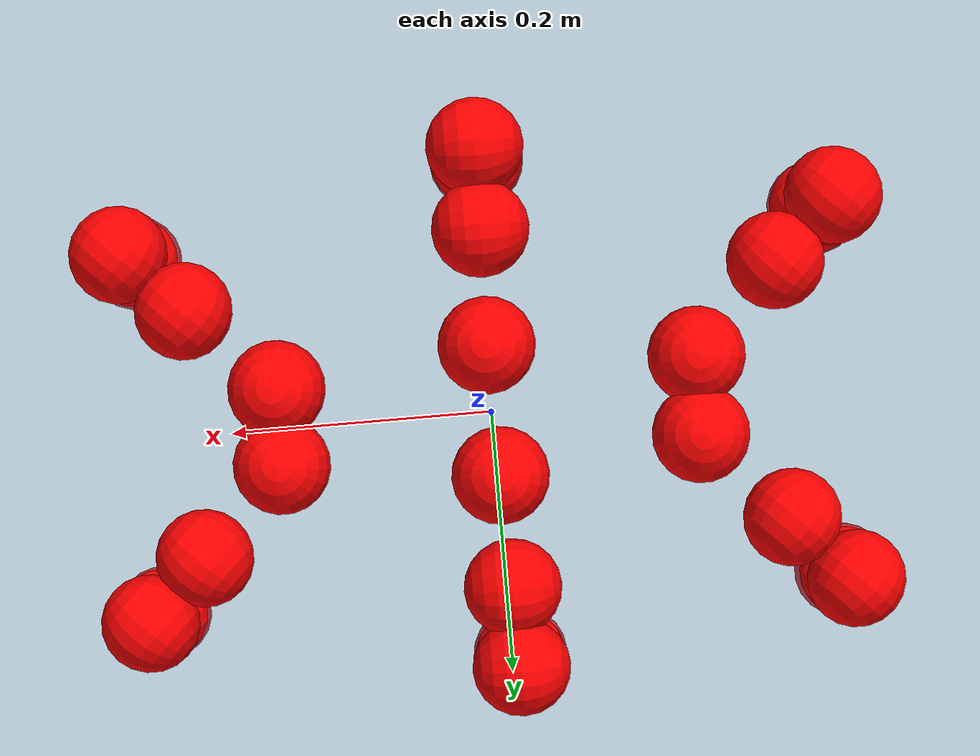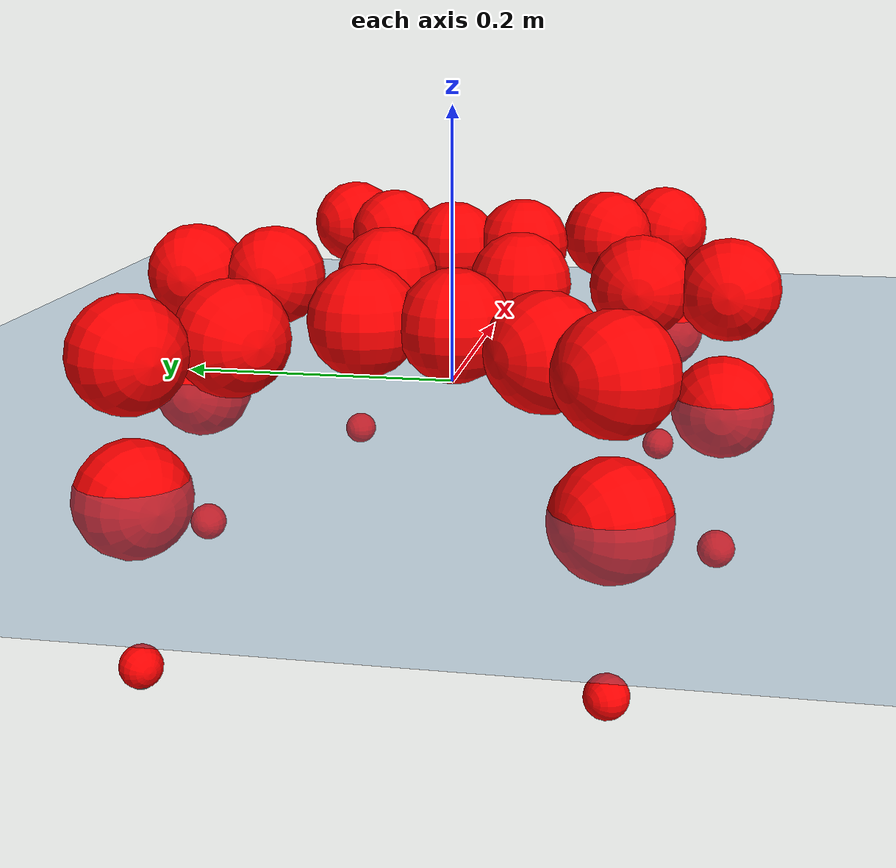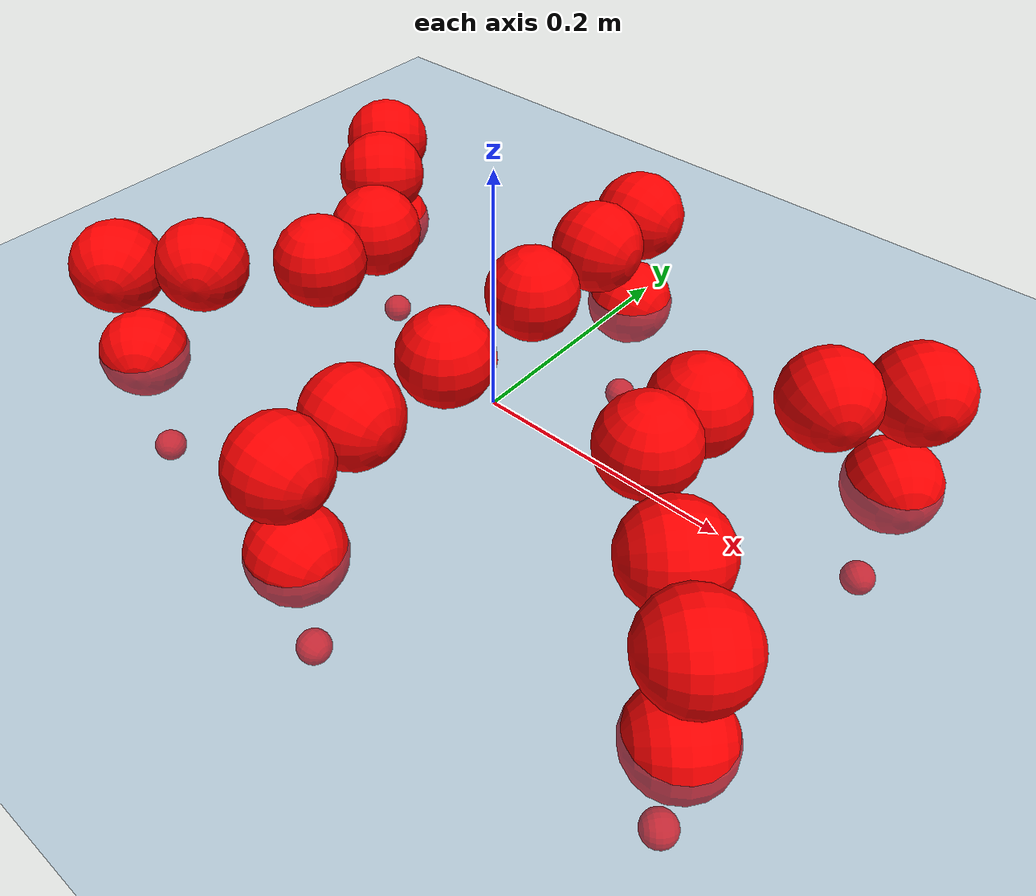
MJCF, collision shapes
<mujoco model="Golem">
  <compiler angle="radian" assetdir="assets" balanceinertia="true" inertiafromgeom="false"/>

  <option timestep="0.005" density="1.2" viscosity="2e-05"/>

  <size nkey="1"/>

  <visual>
    <quality shadowsize="8192"/>
    <map shadowclip="0.5"/>
  </visual>

  <default>
    <default class="/">
      <joint armature="0.01" damping="0.01" frictionloss="0.01"/>
      <geom contype="0" conaffinity="0" group="1" solref="-1000 -80"/>
      <site size="0.01 0.005 0.005" group="5"/>
      <general forcelimited="true" biastype="affine" gainprm="25" biasprm="0 -25 -0.5"/>
      <default class="visual">
        <geom type="mesh" group="2"/>
      </default>
      <default class="collision">
        <geom group="3"/>
      </default>
      <default class="foot">
        <geom size="0.01 0 0" condim="6" group="4" priority="1" solimp="0.015 1 0.01"/>
      </default>
      <default class="reward_collision_sphere">
        <geom group="5" rgba="1 0 0 1"/>
      </default>
    </default>
  </default>

  <asset>
    <texture type="skybox" colorspace="auto" name="//unnamed_texture_0" builtin="gradient" rgb1="0.95 0.95 0.95" rgb2="0.95 0.95 0.95" width="100" height="600"/>
    <texture type="2d" colorspace="auto" name="texplane" builtin="checker" rgb1="0.345 0.575 0.748" rgb2="0.345 0.575 0.748" markrgb="1 1 1" width="512" height="512"/>
    <material name="MatPlane" class="/" texture="texplane" texuniform="true" texrepeat="2 2" specular="0.9"/>
    <mesh name="body" class="/" file="body.stl" scale="0.001 0.001 0.001"/>
    <mesh name="coxa" class="/" file="coxa.stl" scale="0.001 0.001 0.001"/>
    <mesh name="femur" class="/" file="femur.stl" scale="0.001 0.001 0.001"/>
    <mesh name="tibia" class="/" file="tibia.stl" scale="0.001 0.001 0.001"/>
    <mesh name="tarsus" class="/" file="tarsus.stl" scale="0.001 0.001 0.001"/>
  </asset>

  <worldbody>
    <geom name="floor" class="/" size="100 100 0.125" type="plane" group="0" material="MatPlane"/>
    <light name="toplight_shadow" class="/" pos="0 0 5" dir="0.0990148 0.0990148 -0.990148" type="directional" ambient="0.04 0.04 0.04" diffuse="0.55 0.55 0.55" specular="0.12 0.12 0.12"/>
    <light name="toplight_fill" class="/" pos="0 0 5" dir="0.0990148 0.0990148 -0.990148" type="directional" castshadow="false" ambient="0.04 0.04 0.04" diffuse="0.3 0.3 0.3" specular="0.08 0.08 0.08"/>
    <body name="trunk" pos="0.00028267 -0.000476397 0.000952966" quat="1 -0.000274536 0.000377066 -0.000110642">
      <inertial pos="0.00175661 -0.00151621 -0.000855355" quat="1 0.000223655 0.000318967 0.000193469" mass="2.87723" diaginertia="0.0100202 0.00070304 0.0210084"/>
      <joint name="//unnamed_joint_0" type="free"/>
      <geom name="//unnamed_geom_1" class="/" pos="0 0 0.0736171" quat="1 0 0 0" type="mesh" rgba="0.9 0.9 0.9 1" mesh="body"/>
      <site name="imu" class="/" pos="0.130989 -0.000966555 0.103441" size="0.00907711"/>
      <camera name="track" class="/" pos="0 -1.16875 0" quat="0.707107 0.707107 0 0" mode="trackcom"/>
      <camera name="ego_camera" class="/" pos="0.128504 0 0.115027" quat="-0.5 -0.5 0.5 0.5"/>
      <body name="coxa_RR" pos="-0.175589 -0.0498156 0.0748297" quat="0.382671 -0.000127431 7.68882e-06 -0.923885">
        <inertial pos="-0.000271887 3.46578e-05 0.00065429" quat="0.999999 0.00157417 -0.000327272 0.000459958" mass="0.148896" diaginertia="0.00945104 0.00068295 0.0199303"/>
        <joint name="coxa_joint_RR" class="/" pos="0 0 0" axis="0.000566139 0.00939795 -0.999956" range="-3.152 3.14033" armature="0.00894358" damping="0" frictionloss="0.00900576"/>
        <geom name="//unnamed_geom_2" class="/" type="mesh" rgba="0.2 0.2 0.2 1" mesh="coxa"/>
        <geom name="//unnamed_geom_3" class="reward_collision_sphere" size="0.0363084" pos="-0.0296547 0 0"/>
        <body name="femur_RR" pos="0.0609756 0.000697628 0.000378439" quat="0.500029 -0.499988 0.49999 0.499993">
          <inertial pos="-0.000990374 -0.000483095 -0.000125289" quat="1 0.000697072 0.000323735 7.82897e-05" mass="0.147016" diaginertia="0.00947598 0.000664364 0.0196028"/>
          <joint name="femur_joint_RR" class="/" pos="0 0 0" axis="-0.00458466 0.0109603 -0.999929" range="-3.13995 3.11826" armature="0.0090514" damping="0" frictionloss="0.00880262"/>
          <geom name="//unnamed_geom_4" class="/" type="mesh" rgba="0.9 0.9 0.9 1" mesh="femur"/>
          <geom name="//unnamed_geom_5" class="reward_collision_sphere" size="0.0363084"/>
          <body name="tibia_RR" pos="-0.00032818 -0.0640916 -0.00157145" quat="2.51605e-05 1 3.54142e-06 5.62995e-06">
            <inertial pos="-0.000507763 -0.002252 0.000373675" quat="0.999925 -5.61985e-05 0.00109953 0.0122279" mass="0.149772" diaginertia="0.00963128 0.00068201 0.0198579"/>
            <joint name="tibia_joint_RR" class="/" pos="0 0 0" axis="0.00155295 -0.00524258 0.999985" range="-3.12448 3.15799" armature="0.00913281" damping="0.00301689" frictionloss="0.00948452"/>
            <geom name="//unnamed_geom_6" class="/" type="mesh" rgba="0.2 0.2 0.2 1" mesh="tibia"/>
            <geom name="//unnamed_geom_7" class="reward_collision_sphere" size="0.0363084"/>
            <body name="tarsus_RR" pos="0.084717 -0.00244929 -0.000873359" quat="1 -7.46977e-06 -3.72161e-06 1.05233e-05">
              <inertial pos="0.0593624 0.000842472 -0.000868679" quat="0.49251 0.506408 0.503533 0.497433" mass="0.153752" diaginertia="0.00958984 0.00068888 0.0198128"/>
              <joint name="tarsus_joint_RR" class="/" pos="0 0 0" axis="0.000149312 0.000165746 1" range="-3.15399 3.14605" armature="0.0095417" damping="0.0021048" frictionloss="0.00976059"/>
              <geom name="//unnamed_geom_8" class="/" type="mesh" rgba="0.9 0.9 0.9 1" mesh="tarsus"/>
              <geom name="foot_1" class="foot" size="0.0089415" pos="0.110711 0 0" quat="0 -0.707107 0 0.707107"/>
              <geom name="//unnamed_geom_10" class="reward_collision_sphere" size="0.0363084"/>
              <geom name="//unnamed_geom_11" class="reward_collision_sphere" size="0.0136157" pos="0.106263 0 0"/>
              <site name="foot_1" class="foot" pos="0.110711 0 0" quat="0 -0.707107 0 0.707107" size="0.00907711"/>
            </body>
          </body>
        </body>
      </body>
      <body name="coxa_RM" pos="-0.00105918 -0.0786632 0.0738808" quat="0.70725 0.000558643 0.000953122 -0.706962">
        <inertial pos="0.00124485 -4.53786e-05 -0.00144843" quat="1 0.000224423 -0.000386187 -7.47663e-05" mass="0.151452" diaginertia="0.00949595 0.000695763 0.019992"/>
        <joint name="coxa_joint_RM" class="/" pos="0 0 0" axis="0.00104479 0.00082099 -0.999999" range="-3.12828 3.14312" armature="0.0096188" damping="0.0171136" frictionloss="0.0086526"/>
        <geom name="//unnamed_geom_12" class="/" type="mesh" rgba="0.2 0.2 0.2 1" mesh="coxa"/>
        <geom name="//unnamed_geom_13" class="reward_collision_sphere" size="0.0363084" pos="-0.0296547 0 0"/>
        <body name="femur_RM" pos="0.0563115 -0.00265929 0.00117436" quat="0.5002 -0.499964 0.500094 0.499743">
          <inertial pos="0.00236137 -0.000629996 -0.000357141" quat="0.999987 -0.000431783 0.000656588 0.00494882" mass="0.145184" diaginertia="0.00892737 0.000663315 0.0189861"/>
          <joint name="femur_joint_RM" class="/" pos="0 0 0" axis="0.00359586 -0.0028338 -0.99999" range="-3.13895 3.09373" armature="0.00864358" damping="0.0132585" frictionloss="0.00910279"/>
          <geom name="//unnamed_geom_14" class="/" type="mesh" rgba="0.9 0.9 0.9 1" mesh="femur"/>
          <geom name="//unnamed_geom_15" class="reward_collision_sphere" size="0.0363084"/>
          <body name="tibia_RM" pos="0.000159471 -0.0608762 -0.000713166" quat="-0.000143982 1 -7.52413e-05 -2.26416e-05">
            <inertial pos="-0.000415704 0.00274776 0.00058388" quat="0.999999 3.40129e-05 1.95354e-05 0.00145926" mass="0.148115" diaginertia="0.00940955 0.000677612 0.0199703"/>
            <joint name="tibia_joint_RM" class="/" pos="0 0 0" axis="-1.46697e-05 -0.000769986 1" range="-3.13166 3.14939" armature="0.00955706" damping="0.0199666" frictionloss="0.00916361"/>
            <geom name="//unnamed_geom_16" class="/" type="mesh" rgba="0.2 0.2 0.2 1" mesh="tibia"/>
            <geom name="//unnamed_geom_17" class="reward_collision_sphere" size="0.0363084"/>
            <body name="tarsus_RM" pos="0.0842801 -0.00155075 0.000584496" quat="1 5.19106e-06 2.50782e-06 7.02877e-06">
              <inertial pos="0.0612496 -0.000252095 -0.000824978" quat="0.499264 0.500884 0.501051 0.498797" mass="0.15453" diaginertia="0.00942797 0.000682623 0.020756"/>
              <joint name="tarsus_joint_RM" class="/" pos="0 0 0" axis="-0.00592598 -0.0013365 0.999982" stiffness="0.000974212" range="-3.1673 3.10382" armature="0.00912676" damping="0.00749672" frictionloss="0.00844313"/>
              <geom name="//unnamed_geom_18" class="/" type="mesh" rgba="0.9 0.9 0.9 1" mesh="tarsus"/>
              <geom name="foot_2" class="foot" size="0.00937062" pos="0.110711 0 0" quat="0 -0.707107 0 0.707107"/>
              <geom name="//unnamed_geom_20" class="reward_collision_sphere" size="0.0363084"/>
              <geom name="//unnamed_geom_21" class="reward_collision_sphere" size="0.0136157" pos="0.106263 0 0"/>
              <site name="foot_2" class="foot" pos="0.110711 0 0" quat="0 -0.707107 0 0.707107" size="0.00907711"/>
            </body>
          </body>
        </body>
      </body>
      <body name="coxa_RF" pos="0.176875 -0.0505111 0.0761109" quat="0.923939 -0.00030688 4.36241e-05 -0.38254">
        <inertial pos="0.00104139 -0.0023571 0.0016089" quat="0.999936 -0.00720643 0.00533328 0.00684179" mass="0.144683" diaginertia="0.00941994 0.000671916 0.019868"/>
        <joint name="coxa_joint_RF" class="/" pos="0 0 0" axis="-0.00476204 -8.07787e-05 -0.999989" range="-3.09119 3.13443" armature="0.00828775" damping="0" frictionloss="0.00901415"/>
        <geom name="//unnamed_geom_22" class="/" type="mesh" rgba="0.2 0.2 0.2 1" mesh="coxa"/>
        <geom name="//unnamed_geom_23" class="reward_collision_sphere" size="0.0363084" pos="-0.0296547 0 0"/>
        <body name="femur_RF" pos="0.059902 0.000329709 -0.000821065" quat="0.500019 -0.50006 0.499955 0.499966">
          <inertial pos="-0.00108666 0.00214148 0.000486461" quat="0.999986 -0.00109884 -0.00131139 0.00491562" mass="0.149924" diaginertia="0.00978587 0.000700123 0.0210309"/>
          <joint name="femur_joint_RF" class="/" pos="0 0 0" axis="-0.000781023 -0.000490354 -1" range="-3.14918 3.14548" armature="0.00914849" damping="0.00816542" frictionloss="0.00925344"/>
          <geom name="//unnamed_geom_24" class="/" type="mesh" rgba="0.9 0.9 0.9 1" mesh="femur"/>
          <geom name="//unnamed_geom_25" class="reward_collision_sphere" size="0.0363084"/>
          <body name="tibia_RF" pos="0.000657466 -0.0634928 -0.000619511" quat="-5.62805e-05 1 0.000168515 -0.000155277">
            <inertial pos="0.000221036 -5.55849e-05 -0.00255433" quat="0.999952 -0.00801458 0.00375966 -0.00424321" mass="0.152347" diaginertia="0.00967498 0.000671379 0.0207931"/>
            <joint name="tibia_joint_RF" class="/" pos="0 0 0" axis="0.000580417 0.00576168 0.999983" range="-3.14347 3.1372" armature="0.0089792" damping="0.0115992" frictionloss="0.00911104"/>
            <geom name="//unnamed_geom_26" class="/" type="mesh" rgba="0.2 0.2 0.2 1" mesh="tibia"/>
            <geom name="//unnamed_geom_27" class="reward_collision_sphere" size="0.0363084"/>
            <body name="tarsus_RF" pos="0.0872027 0.000800831 -0.00071317" quat="1 -0.000633997 4.15607e-05 0.000205327">
              <inertial pos="0.0597462 -0.00053936 -0.000973979" quat="0.499135 0.500737 0.500095 0.500031" mass="0.150671" diaginertia="0.00959969 0.00066585 0.0195903"/>
              <joint name="tarsus_joint_RF" class="/" pos="0 0 0" axis="-0.00022758 0.000716864 1" stiffness="0.0239441" range="-3.11058 3.13748" armature="0.00864189" damping="0" frictionloss="0.00884134"/>
              <geom name="//unnamed_geom_28" class="/" type="mesh" rgba="0.9 0.9 0.9 1" mesh="tarsus"/>
              <geom name="foot_3" class="foot" size="0.00942739" pos="0.110711 0 0" quat="0 -0.707107 0 0.707107"/>
              <geom name="//unnamed_geom_30" class="reward_collision_sphere" size="0.0363084"/>
              <geom name="//unnamed_geom_31" class="reward_collision_sphere" size="0.0136157" pos="0.106263 0 0"/>
              <site name="foot_3" class="foot" pos="0.110711 0 0" quat="0 -0.707107 0 0.707107" size="0.00907711"/>
            </body>
          </body>
        </body>
      </body>
      <body name="coxa_LR" pos="-0.174029 0.0503626 0.0753943" quat="0.38261 0.00027593 -0.000238621 0.92391">
        <inertial pos="-0.000880743 -0.00188692 -0.000665624" quat="0.999978 -0.00528519 0.00105977 0.00393339" mass="0.146737" diaginertia="0.00960005 0.000662186 0.0192205"/>
        <joint name="coxa_joint_LR" class="/" pos="0 0 0" axis="0.000581642 -0.0025932 -0.999996" range="-3.14045 3.12842" armature="0.00872215" damping="0.0163516" frictionloss="0.00932438"/>
        <geom name="//unnamed_geom_32" class="/" type="mesh" rgba="0.2 0.2 0.2 1" mesh="coxa"/>
        <geom name="//unnamed_geom_33" class="reward_collision_sphere" size="0.0363084" pos="-0.0296547 0 0"/>
        <body name="femur_LR" pos="0.0612565 -0.00344125 -8.23395e-06" quat="0.50036 -0.499608 0.500384 0.499648">
          <inertial pos="7.78349e-05 -0.00270923 -0.000329676" quat="1 -4.5134e-05 0.000398278 -0.000309522" mass="0.149827" diaginertia="0.00915833 0.000689628 0.0195196"/>
          <joint name="femur_joint_LR" class="/" pos="0 0 0" axis="0.00123157 0.000393862 0.999999" range="-3.09773 3.13484" armature="0.00897251" damping="0" frictionloss="0.0091073"/>
          <geom name="//unnamed_geom_34" class="/" type="mesh" rgba="0.9 0.9 0.9 1" mesh="femur"/>
          <geom name="//unnamed_geom_35" class="reward_collision_sphere" size="0.0363084"/>
          <body name="tibia_LR" pos="0.0022443 -0.0653334 -0.00363751" quat="-2.10116e-05 1 -2.53285e-06 1.22247e-05">
            <inertial pos="-7.69898e-05 -0.00151351 0.000554577" quat="0.999952 0.0071381 -0.00673874 0.00074282" mass="0.148052" diaginertia="0.00915073 0.000672098 0.0199093"/>
            <joint name="tibia_joint_LR" class="/" pos="0 0 0" axis="0.00242597 0.000874418 -0.999997" range="-3.13972 3.18318" armature="0.00858532" damping="0" frictionloss="0.00912598"/>
            <geom name="//unnamed_geom_36" class="/" type="mesh" rgba="0.2 0.2 0.2 1" mesh="tibia"/>
            <geom name="//unnamed_geom_37" class="reward_collision_sphere" size="0.0363084"/>
            <body name="tarsus_LR" pos="0.0870147 0.00147789 -0.00176986" quat="1 0.000197016 0.000241356 -0.000397041">
              <inertial pos="0.0622261 -0.00207275 -0.001949" quat="0.501636 0.502064 0.497301 0.498983" mass="0.149542" diaginertia="0.00930906 0.000679909 0.0195243"/>
              <joint name="tarsus_joint_LR" class="/" pos="0 0 0" axis="0.00529982 0.0130041 -0.999901" range="-3.12498 3.13271" armature="0.00857452" damping="0" frictionloss="0.00894835"/>
              <geom name="//unnamed_geom_38" class="/" type="mesh" rgba="0.9 0.9 0.9 1" mesh="tarsus"/>
              <geom name="foot_4" class="foot" size="0.00997789" pos="0.110711 0 0" quat="0.707107 0 -0.707107 0"/>
              <geom name="//unnamed_geom_40" class="reward_collision_sphere" size="0.0363084"/>
              <geom name="//unnamed_geom_41" class="reward_collision_sphere" size="0.0136157" pos="0.106263 0 0"/>
              <site name="foot_4" class="foot" pos="0.110711 0 0" quat="0.707107 0 -0.707107 0" size="0.00907711"/>
            </body>
          </body>
        </body>
      </body>
      <body name="coxa_LM" pos="-0.00337084 0.0771465 0.0753035" quat="0.706974 -0.000445126 8.57266e-05 0.707239">
        <inertial pos="0.00128393 -0.00112233 -0.000640473" quat="0.99995 0.000534929 0.000441988 0.0100011" mass="0.151117" diaginertia="0.00960614 0.000703999 0.0208108"/>
        <joint name="coxa_joint_LM" class="/" pos="0 0 0" axis="-0.0111523 -0.00673585 -0.999915" range="-3.13323 3.12071" armature="0.00860099" damping="0.00529104" frictionloss="0.00924882"/>
        <geom name="//unnamed_geom_42" class="/" type="mesh" rgba="0.2 0.2 0.2 1" mesh="coxa"/>
        <geom name="//unnamed_geom_43" class="reward_collision_sphere" size="0.0363084" pos="-0.0296547 0 0"/>
        <body name="femur_LM" pos="0.053447 0.00209531 -0.0008447" quat="0.499999 -0.499956 0.500043 0.500001">
          <inertial pos="0.000889728 0.000220571 0.00104941" quat="0.999978 -0.00429483 -0.00188032 -0.00462587" mass="0.150856" diaginertia="0.00933656 0.000714329 0.0207503"/>
          <joint name="femur_joint_LM" class="/" pos="0 0 0" axis="-0.000725874 -0.00221257 0.999997" range="-3.16043 3.14892" armature="0.00930181" damping="0.00120923" frictionloss="0.00866862"/>
          <geom name="//unnamed_geom_44" class="/" type="mesh" rgba="0.9 0.9 0.9 1" mesh="femur"/>
          <geom name="//unnamed_geom_45" class="reward_collision_sphere" size="0.0363084"/>
          <body name="tibia_LM" pos="-0.000330574 -0.05884 0.00155191" quat="-0.000295649 1 0.000568523 -0.000478743">
            <inertial pos="0.000332162 -0.000479094 -0.0019307" quat="0.999943 0.00344427 -0.00761406 0.00669324" mass="0.148952" diaginertia="0.00940982 0.000704645 0.0204454"/>
            <joint name="tibia_joint_LM" class="/" pos="0 0 0" axis="-0.000794878 0.00193957 -0.999998" range="-3.13594 3.13868" armature="0.00917117" damping="0" frictionloss="0.00834692"/>
            <geom name="//unnamed_geom_46" class="/" type="mesh" rgba="0.2 0.2 0.2 1" mesh="tibia"/>
            <geom name="//unnamed_geom_47" class="reward_collision_sphere" size="0.0363084"/>
            <body name="tarsus_LM" pos="0.0866423 -0.000613775 -0.000368324" quat="1 -0.000824585 -5.92939e-05 -8.32772e-05">
              <inertial pos="0.0601562 -0.00107755 -2.22723e-05" quat="0.492977 0.505256 0.496341 0.505307" mass="0.152686" diaginertia="0.00969637 0.000686046 0.0200345"/>
              <joint name="tarsus_joint_LM" class="/" pos="0 0 0" axis="0.00832848 -0.00606436 -0.999947" stiffness="0.000746655" range="-3.13059 3.12841" armature="0.00888036" damping="0" frictionloss="0.0100393"/>
              <geom name="//unnamed_geom_48" class="/" type="mesh" rgba="0.9 0.9 0.9 1" mesh="tarsus"/>
              <geom name="foot_5" class="foot" size="0.00898367" pos="0.110711 0 0" quat="0.707107 0 -0.707107 0"/>
              <geom name="//unnamed_geom_50" class="reward_collision_sphere" size="0.0363084"/>
              <geom name="//unnamed_geom_51" class="reward_collision_sphere" size="0.0136157" pos="0.106263 0 0"/>
              <site name="foot_5" class="foot" pos="0.110711 0 0" quat="0.707107 0 -0.707107 0" size="0.00907711"/>
            </body>
          </body>
        </body>
      </body>
      <body name="coxa_LF" pos="0.177921 0.0479244 0.0724291" quat="0.92381 3.38832e-05 -0.000195568 0.382851">
        <inertial pos="-0.000521587 0.00033479 0.00204524" quat="0.999981 0.00135185 0.00421353 0.00438947" mass="0.147788" diaginertia="0.00912899 0.000696438 0.0198497"/>
        <joint name="coxa_joint_LF" class="/" pos="0 0 0" axis="-0.0017023 -0.0129384 -0.999915" range="-3.13273 3.13477" armature="0.00831585" damping="0" frictionloss="0.0102396"/>
        <geom name="//unnamed_geom_52" class="/" type="mesh" rgba="0.2 0.2 0.2 1" mesh="coxa"/>
        <geom name="//unnamed_geom_53" class="reward_collision_sphere" size="0.0363084" pos="-0.0296547 0 0"/>
        <body name="femur_LF" pos="0.0589631 0.000677224 0.000403467" quat="0.499922 -0.499964 0.500075 0.500039">
          <inertial pos="-0.00259557 0.000403145 0.00254255" quat="0.999997 0.00207869 0.00142321 -0.000767183" mass="0.151281" diaginertia="0.00975618 0.000686884 0.020201"/>
          <joint name="femur_joint_LF" class="/" pos="0 0 0" axis="-0.00447943 -0.000366329 0.99999" range="-3.13089 3.12841" armature="0.00929243" damping="0" frictionloss="0.00866263"/>
          <geom name="//unnamed_geom_54" class="/" type="mesh" rgba="0.9 0.9 0.9 1" mesh="femur"/>
          <geom name="//unnamed_geom_55" class="reward_collision_sphere" size="0.0363084"/>
          <body name="tibia_LF" pos="-0.000607329 -0.0624215 0.000632333" quat="8.8179e-05 1 -1.31064e-05 -2.65456e-05">
            <inertial pos="0.000664763 -0.00234056 -0.000160847" quat="1 -0.000317144 -0.00010322 -5.43881e-05" mass="0.143236" diaginertia="0.00885159 0.000659437 0.0192418"/>
            <joint name="tibia_joint_LF" class="/" pos="0 0 0" axis="-0.00537391 0.00193542 -0.999984" range="-3.13666 3.14197" armature="0.00953931" damping="0" frictionloss="0.00910877"/>
            <geom name="//unnamed_geom_56" class="/" type="mesh" rgba="0.2 0.2 0.2 1" mesh="tibia"/>
            <geom name="//unnamed_geom_57" class="reward_collision_sphere" size="0.0363084"/>
            <body name="tarsus_LF" pos="0.0850961 0.000955546 0.00181115" quat="1 -1.69376e-05 -0.000127727 7.16609e-05">
              <inertial pos="0.0592944 0.000674954 0.000193371" quat="0.500234 0.500308 0.50176 0.497689" mass="0.142316" diaginertia="0.00903787 0.000646715 0.0193367"/>
              <joint name="tarsus_joint_LF" class="/" pos="0 0 0" axis="-0.000809253 0.00330623 -0.999994" stiffness="0.000986765" range="-3.15265 3.13418" armature="0.00982198" damping="0.0130314" frictionloss="0.00794387"/>
              <geom name="//unnamed_geom_58" class="/" type="mesh" rgba="0.9 0.9 0.9 1" mesh="tarsus"/>
              <geom name="foot_6" class="foot" size="0.00869907" pos="0.110711 0 0" quat="0.707107 0 -0.707107 0"/>
              <geom name="//unnamed_geom_60" class="reward_collision_sphere" size="0.0363084"/>
              <geom name="//unnamed_geom_61" class="reward_collision_sphere" size="0.0136157" pos="0.106263 0 0"/>
              <site name="foot_6" class="foot" pos="0.110711 0 0" quat="0.707107 0 -0.707107 0" size="0.00907711"/>
            </body>
          </body>
        </body>
      </body>
    </body>
  </worldbody>

  <contact>
    <pair class="/" geom1="floor" geom2="foot_1" name="//unnamed_contact_0"/>
    <pair class="/" geom1="floor" geom2="foot_2" name="//unnamed_contact_1"/>
    <pair class="/" geom1="floor" geom2="foot_3" name="//unnamed_contact_2"/>
    <pair class="/" geom1="floor" geom2="foot_4" name="//unnamed_contact_3"/>
    <pair class="/" geom1="floor" geom2="foot_5" name="//unnamed_contact_4"/>
    <pair class="/" geom1="floor" geom2="foot_6" name="//unnamed_contact_5"/>
  </contact>

  <actuator>
    <general name="coxa_joint_RR" class="/" joint="coxa_joint_RR" forcerange="-6.86938 6.86938" gainprm="22.621" biasprm="0 -22.621 -0.487665"/>
    <general name="femur_joint_RR" class="/" joint="femur_joint_RR" forcerange="-6.52658 6.52658" gainprm="22.621" biasprm="0 -22.621 -0.487665"/>
    <general name="tibia_joint_RR" class="/" joint="tibia_joint_RR" forcerange="-6.88624 6.88624" gainprm="22.621" biasprm="0 -22.621 -0.487665"/>
    <general name="tarsus_joint_RR" class="/" joint="tarsus_joint_RR" forcerange="-7.13244 7.13244" gainprm="22.621" biasprm="0 -22.621 -0.487665"/>
    <general name="coxa_joint_RM" class="/" joint="coxa_joint_RM" forcerange="-6.7126 6.7126" gainprm="22.621" biasprm="0 -22.621 -0.487665"/>
    <general name="femur_joint_RM" class="/" joint="femur_joint_RM" forcerange="-6.64884 6.64884" gainprm="22.621" biasprm="0 -22.621 -0.487665"/>
    <general name="tibia_joint_RM" class="/" joint="tibia_joint_RM" forcerange="-6.55457 6.55457" gainprm="22.621" biasprm="0 -22.621 -0.487665"/>
    <general name="tarsus_joint_RM" class="/" joint="tarsus_joint_RM" forcerange="-7.23274 7.23274" gainprm="22.621" biasprm="0 -22.621 -0.487665"/>
    <general name="coxa_joint_RF" class="/" joint="coxa_joint_RF" forcerange="-6.61071 6.61071" gainprm="22.621" biasprm="0 -22.621 -0.487665"/>
    <general name="femur_joint_RF" class="/" joint="femur_joint_RF" forcerange="-6.04896 6.04896" gainprm="22.621" biasprm="0 -22.621 -0.487665"/>
    <general name="tibia_joint_RF" class="/" joint="tibia_joint_RF" forcerange="-6.77892 6.77892" gainprm="22.621" biasprm="0 -22.621 -0.487665"/>
    <general name="tarsus_joint_RF" class="/" joint="tarsus_joint_RF" forcerange="-6.40036 6.40036" gainprm="22.621" biasprm="0 -22.621 -0.487665"/>
    <general name="coxa_joint_LR" class="/" joint="coxa_joint_LR" forcerange="-6.55913 6.55913" gainprm="22.621" biasprm="0 -22.621 -0.487665"/>
    <general name="femur_joint_LR" class="/" joint="femur_joint_LR" forcerange="-6.71066 6.71066" gainprm="22.621" biasprm="0 -22.621 -0.487665"/>
    <general name="tibia_joint_LR" class="/" joint="tibia_joint_LR" forcerange="-6.60034 6.60034" gainprm="22.621" biasprm="0 -22.621 -0.487665"/>
    <general name="tarsus_joint_LR" class="/" joint="tarsus_joint_LR" forcerange="-6.55061 6.55061" gainprm="22.621" biasprm="0 -22.621 -0.487665"/>
    <general name="coxa_joint_LM" class="/" joint="coxa_joint_LM" forcerange="-6.73682 6.73682" gainprm="22.621" biasprm="0 -22.621 -0.487665"/>
    <general name="femur_joint_LM" class="/" joint="femur_joint_LM" forcerange="-6.47924 6.47924" gainprm="22.621" biasprm="0 -22.621 -0.487665"/>
    <general name="tibia_joint_LM" class="/" joint="tibia_joint_LM" forcerange="-6.8473 6.8473" gainprm="22.621" biasprm="0 -22.621 -0.487665"/>
    <general name="tarsus_joint_LM" class="/" joint="tarsus_joint_LM" forcerange="-6.7951 6.7951" gainprm="22.621" biasprm="0 -22.621 -0.487665"/>
    <general name="coxa_joint_LF" class="/" joint="coxa_joint_LF" forcerange="-6.13597 6.13597" gainprm="22.621" biasprm="0 -22.621 -0.487665"/>
    <general name="femur_joint_LF" class="/" joint="femur_joint_LF" forcerange="-6.55367 6.55367" gainprm="22.621" biasprm="0 -22.621 -0.487665"/>
    <general name="tibia_joint_LF" class="/" joint="tibia_joint_LF" forcerange="-6.68963 6.68963" gainprm="22.621" biasprm="0 -22.621 -0.487665"/>
    <general name="tarsus_joint_LF" class="/" joint="tarsus_joint_LF" forcerange="-6.86842 6.86842" gainprm="22.621" biasprm="0 -22.621 -0.487665"/>
  </actuator>

  <sensor>
    <gyro site="imu" name="imu_angular_velocity"/>
    <velocimeter site="imu" name="imu_linear_velocity"/>
    <framelinvel objtype="site" objname="foot_1" name="foot_1_global_linear_velocity"/>
    <framelinvel objtype="site" objname="foot_2" name="foot_2_global_linear_velocity"/>
    <framelinvel objtype="site" objname="foot_3" name="foot_3_global_linear_velocity"/>
    <framelinvel objtype="site" objname="foot_4" name="foot_4_global_linear_velocity"/>
    <framelinvel objtype="site" objname="foot_5" name="foot_5_global_linear_velocity"/>
    <framelinvel objtype="site" objname="foot_6" name="foot_6_global_linear_velocity"/>
  </sensor>

  <keyframe>
    <key name="home" qpos="0 0 0.1457 1 0 0 0 0 0 0 0 0 0 0 0 0 0 0 0 0 0 0 0 0 0 0 0 0 0 0 0"/>
  </keyframe>
</mujoco>
